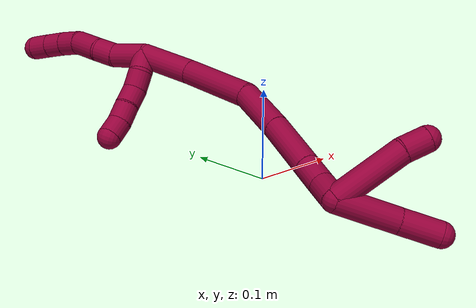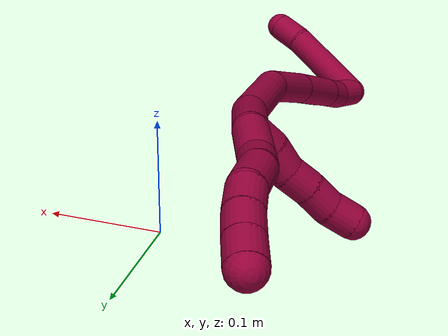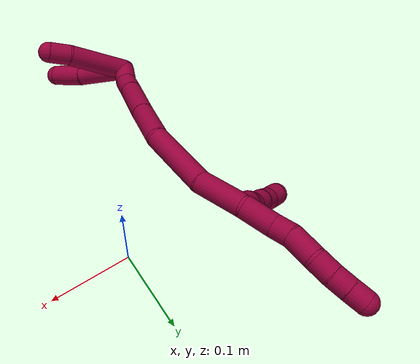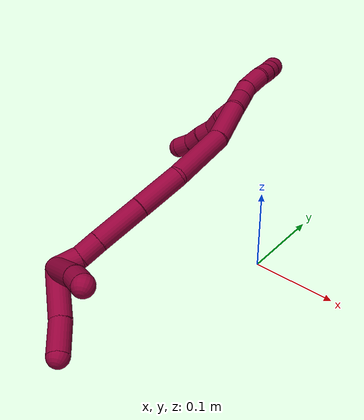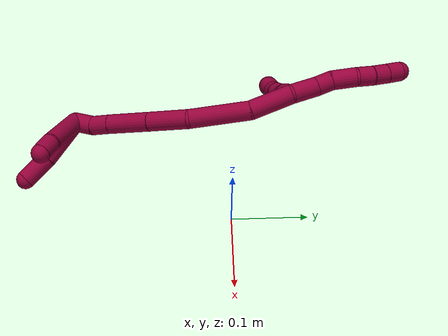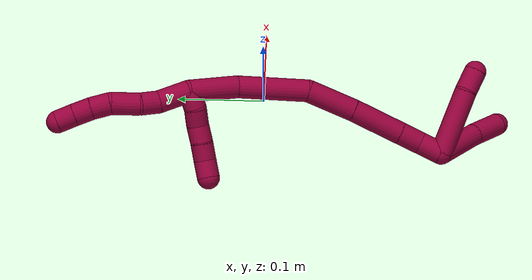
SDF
<sdf version="1.7">
 <world name="default">
  <model name="photoneo_s_sensor">
   <static>1</static>
   <pose>0 0 2 1.57079 1.57079 3.14159</pose>
   <link name="link">
    <inertial><mass>0.1</mass></inertial>
    <sensor name="sensor" type="depth">
     <update_rate>30</update_rate>
     <camera>
      <horizontal_fov>1.22</horizontal_fov>
      <image><width>1920</width><height>1200</height><format>B8G8R8</format></image>
      <clip><near>0.1</near><far>4</far></clip>
      <depth_camera><output>points</output></depth_camera>
     </camera>
     <plugin name="camera_plugin" filename="libgazebo_ros_depth_camera.so">
      <baseline>0.2</baseline>
      <alwaysOn>1</alwaysOn>
      <updateRate>0.0</updateRate>
      <cameraName>camera_ir</cameraName>
      <imageTopicName>/camera/color/image_raw</imageTopicName>
      <cameraInfoTopicName>/camera/color/camera_info</cameraInfoTopicName>
      <depthImageTopicName>/camera/depth/image_raw</depthImageTopicName>
      <depthImageCameraInfoTopicName>/camera/depth/camera_info</depthImageCameraInfoTopicName>
      <pointCloudTopicName>/camera/depth/points</pointCloudTopicName>
      <frameName>fr_optical</frameName>
      <pointCloudCutoff>0.1</pointCloudCutoff>
      <pointCloudCutoffMax>2.0</pointCloudCutoffMax>
      <distortionK1>0</distortionK1>
      <distortionK2>0</distortionK2>
      <distortionK3>0</distortionK3>
      <distortionT1>0</distortionT1>
      <distortionT2>0</distortionT2>
      <CxPrime>0</CxPrime>
      <Cx>0</Cx>
      <Cy>0</Cy>
      <focalLength>0</focalLength>
      <hackBaseline>0</hackBaseline>
     </plugin>
    </sensor>
   </link>
  </model>
  <model name="bin">
   <static>1</static>
   <link name="bottom">
    <collision name="collision-bottom">
     <pose>0 0 -0.01 0 -0 0</pose>
     <geometry><box><size>0.8 0.6 0.02</size></box></geometry>
     <surface>
      <friction><ode><mu>100</mu><mu2>100</mu2></ode></friction>
      <contact><collide_bitmask>65535</collide_bitmask></contact>
     </surface>
    </collision>
   </link>
   <link name="west_wall">
    <collision name="collision-west_wall">
     <pose>-0.41 0 0.1 0 -0 0</pose>
     <geometry><box><size>0.02 0.6 0.2</size></box></geometry>
     <surface>
      <friction><ode><mu>100</mu><mu2>100</mu2></ode></friction>
      <contact><collide_bitmask>65535</collide_bitmask></contact>
     </surface>
    </collision>
   </link>
   <link name="east_wall">
    <collision name="collision-east_wall">
     <pose>0.41 0 0.1 0 -0 0</pose>
     <geometry><box><size>0.02 0.6 0.2</size></box></geometry>
     <surface>
      <friction><ode><mu>100</mu><mu2>100</mu2></ode></friction>
      <contact><collide_bitmask>65535</collide_bitmask></contact>
     </surface>
    </collision>
   </link>
   <link name="south_wall">
    <collision name="collision-south_wall">
     <pose>0 -0.31 0.1 0 -0 0</pose>
     <geometry><box><size>0.8 0.02 0.2</size></box></geometry>
     <surface>
      <friction><ode><mu>100</mu><mu2>100</mu2></ode></friction>
      <contact><collide_bitmask>65535</collide_bitmask></contact>
     </surface>
    </collision>
   </link>
   <link name="north_wall">
    <collision name="collision-north_wall">
     <pose>0 0.31 0.1 0 -0 0</pose>
     <geometry><box><size>0.8 0.02 0.2</size></box></geometry>
     <surface>
      <friction><ode><mu>100</mu><mu2>100</mu2></ode></friction>
      <contact><collide_bitmask>65535</collide_bitmask></contact>
     </surface>
    </collision>
   </link>
  </model>
  <model name="8">
   <static>0</static>
   <link name="8">
    <collision name="collision-cylinder-e_1_2_8">
     <pose>-0.004211 -0.005044 0.01647 0.297173 -0.239751 -0.036057</pose>
     <geometry><cylinder><radius>0.0125</radius><length>0.035464</length></cylinder></geometry>
     <surface>
      <friction><ode><mu>1.16</mu><mu2>1.16</mu2><slip1>0</slip1><slip2>0</slip2></ode></friction>
      <contact><ode><kp>1e+06</kp><kd>1</kd><max_vel>0</max_vel><min_depth>0.001</min_depth></ode></contact>
     </surface>
    </collision>
    <visual name="visual-cylinder-e_1_2_8">
     <pose>-0.004211 -0.005044 0.01647 0.297173 -0.239751 -0.036057</pose>
     <geometry><cylinder><radius>0.0125</radius><length>0.035464</length></cylinder></geometry>
     <material><ambient>0.584314 0 0.227451 1</ambient></material>
    </visual>
    <collision name="collision-cylinder-e_2_8_9">
     <pose>-0.010737 -0.010233 0.043281 0.014075 -0.220286 -0.001557</pose>
     <geometry><cylinder><radius>0.0125</radius><length>0.021196</length></cylinder></geometry>
     <surface>
      <friction><ode><mu>1.16</mu><mu2>1.16</mu2><slip1>0</slip1><slip2>0</slip2></ode></friction>
      <contact><ode><kp>1e+06</kp><kd>1</kd><max_vel>0</max_vel><min_depth>0.001</min_depth></ode></contact>
     </surface>
    </collision>
    <visual name="visual-cylinder-e_2_8_9">
     <pose>-0.010737 -0.010233 0.043281 0.014075 -0.220286 -0.001557</pose>
     <geometry><cylinder><radius>0.0125</radius><length>0.021196</length></cylinder></geometry>
     <material><ambient>0.584314 0 0.227451 1</ambient></material>
    </visual>
    <collision name="collision-cylinder-e_3_9_10">
     <pose>-0.020176 -0.010214 0.067667 -0.011701 -0.469346 0.002797</pose>
     <geometry><cylinder><radius>0.0125</radius><length>0.031499</length></cylinder></geometry>
     <surface>
      <friction><ode><mu>1.16</mu><mu2>1.16</mu2><slip1>0</slip1><slip2>0</slip2></ode></friction>
      <contact><ode><kp>1e+06</kp><kd>1</kd><max_vel>0</max_vel><min_depth>0.001</min_depth></ode></contact>
     </surface>
    </collision>
    <visual name="visual-cylinder-e_3_9_10">
     <pose>-0.020176 -0.010214 0.067667 -0.011701 -0.469346 0.002797</pose>
     <geometry><cylinder><radius>0.0125</radius><length>0.031499</length></cylinder></geometry>
     <material><ambient>0.584314 0 0.227451 1</ambient></material>
    </visual>
    <collision name="collision-cylinder-e_4_10_11">
     <pose>-0.031921 -0.013196 0.091044 0.32514 -0.438713 -0.073101</pose>
     <geometry><cylinder><radius>0.0125</radius><length>0.021755</length></cylinder></geometry>
     <surface>
      <friction><ode><mu>1.16</mu><mu2>1.16</mu2><slip1>0</slip1><slip2>0</slip2></ode></friction>
      <contact><ode><kp>1e+06</kp><kd>1</kd><max_vel>0</max_vel><min_depth>0.001</min_depth></ode></contact>
     </surface>
    </collision>
    <visual name="visual-cylinder-e_4_10_11">
     <pose>-0.031921 -0.013196 0.091044 0.32514 -0.438713 -0.073101</pose>
     <geometry><cylinder><radius>0.0125</radius><length>0.021755</length></cylinder></geometry>
     <material><ambient>0.584314 0 0.227451 1</ambient></material>
    </visual>
    <collision name="collision-cylinder-e_5_11_12">
     <pose>-0.039997 -0.020004 0.109029 0.400409 -0.352437 -0.072236</pose>
     <geometry><cylinder><radius>0.0125</radius><length>0.020023</length></cylinder></geometry>
     <surface>
      <friction><ode><mu>1.16</mu><mu2>1.16</mu2><slip1>0</slip1><slip2>0</slip2></ode></friction>
      <contact><ode><kp>1e+06</kp><kd>1</kd><max_vel>0</max_vel><min_depth>0.001</min_depth></ode></contact>
     </surface>
    </collision>
    <visual name="visual-cylinder-e_5_11_12">
     <pose>-0.039997 -0.020004 0.109029 0.400409 -0.352437 -0.072236</pose>
     <geometry><cylinder><radius>0.0125</radius><length>0.020023</length></cylinder></geometry>
     <material><ambient>0.584314 0 0.227451 1</ambient></material>
    </visual>
    <collision name="collision-cylinder-e_6_12_6">
     <pose>-0.04668 -0.02756 0.126345 0.42238 -0.327592 -0.070837</pose>
     <geometry><cylinder><radius>0.0125</radius><length>0.020062</length></cylinder></geometry>
     <surface>
      <friction><ode><mu>1.16</mu><mu2>1.16</mu2><slip1>0</slip1><slip2>0</slip2></ode></friction>
      <contact><ode><kp>1e+06</kp><kd>1</kd><max_vel>0</max_vel><min_depth>0.001</min_depth></ode></contact>
     </surface>
    </collision>
    <visual name="visual-cylinder-e_6_12_6">
     <pose>-0.04668 -0.02756 0.126345 0.42238 -0.327592 -0.070837</pose>
     <geometry><cylinder><radius>0.0125</radius><length>0.020062</length></cylinder></geometry>
     <material><ambient>0.584314 0 0.227451 1</ambient></material>
    </visual>
    <collision name="collision-cylinder-e_1_2_13">
     <pose>0.004173 -0.008871 -0.001974 1.78981 0.43043 0.532279</pose>
     <geometry><cylinder><radius>0.0125</radius><length>0.02</length></cylinder></geometry>
     <surface>
      <friction><ode><mu>1.16</mu><mu2>1.16</mu2><slip1>0</slip1><slip2>0</slip2></ode></friction>
      <contact><ode><kp>1e+06</kp><kd>1</kd><max_vel>0</max_vel><min_depth>0.001</min_depth></ode></contact>
     </surface>
    </collision>
    <visual name="visual-cylinder-e_1_2_13">
     <pose>0.004173 -0.008871 -0.001974 1.78981 0.43043 0.532279</pose>
     <geometry><cylinder><radius>0.0125</radius><length>0.02</length></cylinder></geometry>
     <material><ambient>0.584314 0 0.227451 1</ambient></material>
    </visual>
    <collision name="collision-cylinder-e_2_13_14">
     <pose>0.010056 -0.027552 -0.004855 1.66292 0.171938 0.188461</pose>
     <geometry><cylinder><radius>0.0125</radius><length>0.02</length></cylinder></geometry>
     <surface>
      <friction><ode><mu>1.16</mu><mu2>1.16</mu2><slip1>0</slip1><slip2>0</slip2></ode></friction>
      <contact><ode><kp>1e+06</kp><kd>1</kd><max_vel>0</max_vel><min_depth>0.001</min_depth></ode></contact>
     </surface>
    </collision>
    <visual name="visual-cylinder-e_2_13_14">
     <pose>0.010056 -0.027552 -0.004855 1.66292 0.171938 0.188461</pose>
     <geometry><cylinder><radius>0.0125</radius><length>0.02</length></cylinder></geometry>
     <material><ambient>0.584314 0 0.227451 1</ambient></material>
    </visual>
    <collision name="collision-cylinder-e_3_14_15">
     <pose>0.016509 -0.046161 -0.006094 1.60851 0.494067 0.512254</pose>
     <geometry><cylinder><radius>0.0125</radius><length>0.02</length></cylinder></geometry>
     <surface>
      <friction><ode><mu>1.16</mu><mu2>1.16</mu2><slip1>0</slip1><slip2>0</slip2></ode></friction>
      <contact><ode><kp>1e+06</kp><kd>1</kd><max_vel>0</max_vel><min_depth>0.001</min_depth></ode></contact>
     </surface>
    </collision>
    <visual name="visual-cylinder-e_3_14_15">
     <pose>0.016509 -0.046161 -0.006094 1.60851 0.494067 0.512254</pose>
     <geometry><cylinder><radius>0.0125</radius><length>0.02</length></cylinder></geometry>
     <material><ambient>0.584314 0 0.227451 1</ambient></material>
    </visual>
    <collision name="collision-cylinder-e_4_15_16">
     <pose>0.024935 -0.064247 -0.006816 1.61284 0.377252 0.393051</pose>
     <geometry><cylinder><radius>0.0125</radius><length>0.02</length></cylinder></geometry>
     <surface>
      <friction><ode><mu>1.16</mu><mu2>1.16</mu2><slip1>0</slip1><slip2>0</slip2></ode></friction>
      <contact><ode><kp>1e+06</kp><kd>1</kd><max_vel>0</max_vel><min_depth>0.001</min_depth></ode></contact>
     </surface>
    </collision>
    <visual name="visual-cylinder-e_4_15_16">
     <pose>0.024935 -0.064247 -0.006816 1.61284 0.377252 0.393051</pose>
     <geometry><cylinder><radius>0.0125</radius><length>0.02</length></cylinder></geometry>
     <material><ambient>0.584314 0 0.227451 1</ambient></material>
    </visual>
    <collision name="collision-cylinder-e_5_16_5">
     <pose>0.034282 -0.081755 -0.006599 1.49695 0.602054 0.561453</pose>
     <geometry><cylinder><radius>0.0125</radius><length>0.02</length></cylinder></geometry>
     <surface>
      <friction><ode><mu>1.16</mu><mu2>1.16</mu2><slip1>0</slip1><slip2>0</slip2></ode></friction>
      <contact><ode><kp>1e+06</kp><kd>1</kd><max_vel>0</max_vel><min_depth>0.001</min_depth></ode></contact>
     </surface>
    </collision>
    <visual name="visual-cylinder-e_5_16_5">
     <pose>0.034282 -0.081755 -0.006599 1.49695 0.602054 0.561453</pose>
     <geometry><cylinder><radius>0.0125</radius><length>0.02</length></cylinder></geometry>
     <material><ambient>0.584314 0 0.227451 1</ambient></material>
    </visual>
    <collision name="collision-cylinder-e_1_2_17">
     <pose>0.006152 -0.000196 -0.027153 3.13437 0.222796 3.07707</pose>
     <geometry><cylinder><radius>0.0125</radius><length>0.055685</length></cylinder></geometry>
     <surface>
      <friction><ode><mu>1.16</mu><mu2>1.16</mu2><slip1>0</slip1><slip2>0</slip2></ode></friction>
      <contact><ode><kp>1e+06</kp><kd>1</kd><max_vel>0</max_vel><min_depth>0.001</min_depth></ode></contact>
     </surface>
    </collision>
    <visual name="visual-cylinder-e_1_2_17">
     <pose>0.006152 -0.000196 -0.027153 3.13437 0.222796 3.07707</pose>
     <geometry><cylinder><radius>0.0125</radius><length>0.055685</length></cylinder></geometry>
     <material><ambient>0.584314 0 0.227451 1</ambient></material>
    </visual>
    <collision name="collision-cylinder-e_2_17_18">
     <pose>0.03019 -0.002125 -0.089306 3.09212 0.471952 2.93653</pose>
     <geometry><cylinder><radius>0.0125</radius><length>0.078685</length></cylinder></geometry>
     <surface>
      <friction><ode><mu>1.16</mu><mu2>1.16</mu2><slip1>0</slip1><slip2>0</slip2></ode></friction>
      <contact><ode><kp>1e+06</kp><kd>1</kd><max_vel>0</max_vel><min_depth>0.001</min_depth></ode></contact>
     </surface>
    </collision>
    <visual name="visual-cylinder-e_2_17_18">
     <pose>0.03019 -0.002125 -0.089306 3.09212 0.471952 2.93653</pose>
     <geometry><cylinder><radius>0.0125</radius><length>0.078685</length></cylinder></geometry>
     <material><ambient>0.584314 0 0.227451 1</ambient></material>
    </visual>
    <collision name="collision-cylinder-e_3_18_19">
     <pose>0.062718 -0.01372 -0.145477 2.70569 0.559968 1.82894</pose>
     <geometry><cylinder><radius>0.0125</radius><length>0.055133</length></cylinder></geometry>
     <surface>
      <friction><ode><mu>1.16</mu><mu2>1.16</mu2><slip1>0</slip1><slip2>0</slip2></ode></friction>
      <contact><ode><kp>1e+06</kp><kd>1</kd><max_vel>0</max_vel><min_depth>0.001</min_depth></ode></contact>
     </surface>
    </collision>
    <visual name="visual-cylinder-e_3_18_19">
     <pose>0.062718 -0.01372 -0.145477 2.70569 0.559968 1.82894</pose>
     <geometry><cylinder><radius>0.0125</radius><length>0.055133</length></cylinder></geometry>
     <material><ambient>0.584314 0 0.227451 1</ambient></material>
    </visual>
    <collision name="collision-cylinder-e_4_19_20">
     <pose>0.092816 -0.035246 -0.188226 2.64598 0.562283 1.7027</pose>
     <geometry><cylinder><radius>0.0125</radius><length>0.057983</length></cylinder></geometry>
     <surface>
      <friction><ode><mu>1.16</mu><mu2>1.16</mu2><slip1>0</slip1><slip2>0</slip2></ode></friction>
      <contact><ode><kp>1e+06</kp><kd>1</kd><max_vel>0</max_vel><min_depth>0.001</min_depth></ode></contact>
     </surface>
    </collision>
    <visual name="visual-cylinder-e_4_19_20">
     <pose>0.092816 -0.035246 -0.188226 2.64598 0.562283 1.7027</pose>
     <geometry><cylinder><radius>0.0125</radius><length>0.057983</length></cylinder></geometry>
     <material><ambient>0.584314 0 0.227451 1</ambient></material>
    </visual>
    <collision name="collision-cylinder-e_5_20_21">
     <pose>0.114929 -0.052218 -0.219542 2.6427 0.540531 1.65459</pose>
     <geometry><cylinder><radius>0.0125</radius><length>0.025872</length></cylinder></geometry>
     <surface>
      <friction><ode><mu>1.16</mu><mu2>1.16</mu2><slip1>0</slip1><slip2>0</slip2></ode></friction>
      <contact><ode><kp>1e+06</kp><kd>1</kd><max_vel>0</max_vel><min_depth>0.001</min_depth></ode></contact>
     </surface>
    </collision>
    <visual name="visual-cylinder-e_5_20_21">
     <pose>0.114929 -0.052218 -0.219542 2.6427 0.540531 1.65459</pose>
     <geometry><cylinder><radius>0.0125</radius><length>0.025872</length></cylinder></geometry>
     <material><ambient>0.584314 0 0.227451 1</ambient></material>
    </visual>
    <collision name="collision-cylinder-e_6_21_1">
     <pose>0.131132 -0.061563 -0.23765 2.69197 0.798886 2.14868</pose>
     <geometry><cylinder><radius>0.0125</radius><length>0.026643</length></cylinder></geometry>
     <surface>
      <friction><ode><mu>1.16</mu><mu2>1.16</mu2><slip1>0</slip1><slip2>0</slip2></ode></friction>
      <contact><ode><kp>1e+06</kp><kd>1</kd><max_vel>0</max_vel><min_depth>0.001</min_depth></ode></contact>
     </surface>
    </collision>
    <visual name="visual-cylinder-e_6_21_1">
     <pose>0.131132 -0.061563 -0.23765 2.69197 0.798886 2.14868</pose>
     <geometry><cylinder><radius>0.0125</radius><length>0.026643</length></cylinder></geometry>
     <material><ambient>0.584314 0 0.227451 1</ambient></material>
    </visual>
    <collision name="collision-cylinder-e_1_1_22">
     <pose>0.130848 -0.064813 -0.274958 -3.11435 -0.327317 2.97696</pose>
     <geometry><cylinder><radius>0.0125</radius><length>0.061147</length></cylinder></geometry>
     <surface>
      <friction><ode><mu>1.16</mu><mu2>1.16</mu2><slip1>0</slip1><slip2>0</slip2></ode></friction>
      <contact><ode><kp>1e+06</kp><kd>1</kd><max_vel>0</max_vel><min_depth>0.001</min_depth></ode></contact>
     </surface>
    </collision>
    <visual name="visual-cylinder-e_1_1_22">
     <pose>0.130848 -0.064813 -0.274958 -3.11435 -0.327317 2.97696</pose>
     <geometry><cylinder><radius>0.0125</radius><length>0.061147</length></cylinder></geometry>
     <material><ambient>0.584314 0 0.227451 1</ambient></material>
    </visual>
    <collision name="collision-cylinder-e_2_22_4">
     <pose>0.11719 -0.063303 -0.32293 -3.10373 -0.198345 2.76552</pose>
     <geometry><cylinder><radius>0.0125</radius><length>0.038853</length></cylinder></geometry>
     <surface>
      <friction><ode><mu>1.16</mu><mu2>1.16</mu2><slip1>0</slip1><slip2>0</slip2></ode></friction>
      <contact><ode><kp>1e+06</kp><kd>1</kd><max_vel>0</max_vel><min_depth>0.001</min_depth></ode></contact>
     </surface>
    </collision>
    <visual name="visual-cylinder-e_2_22_4">
     <pose>0.11719 -0.063303 -0.32293 -3.10373 -0.198345 2.76552</pose>
     <geometry><cylinder><radius>0.0125</radius><length>0.038853</length></cylinder></geometry>
     <material><ambient>0.584314 0 0.227451 1</ambient></material>
    </visual>
    <collision name="collision-cylinder-e_1_1_23">
     <pose>0.131758 -0.035339 -0.265724 -2.14799 -0.242134 0.441494</pose>
     <geometry><cylinder><radius>0.0125</radius><length>0.074396</length></cylinder></geometry>
     <surface>
      <friction><ode><mu>1.16</mu><mu2>1.16</mu2><slip1>0</slip1><slip2>0</slip2></ode></friction>
      <contact><ode><kp>1e+06</kp><kd>1</kd><max_vel>0</max_vel><min_depth>0.001</min_depth></ode></contact>
     </surface>
    </collision>
    <visual name="visual-cylinder-e_1_1_23">
     <pose>0.131758 -0.035339 -0.265724 -2.14799 -0.242134 0.441494</pose>
     <geometry><cylinder><radius>0.0125</radius><length>0.074396</length></cylinder></geometry>
     <material><ambient>0.584314 0 0.227451 1</ambient></material>
    </visual>
    <collision name="collision-cylinder-e_2_23_3">
     <pose>0.118796 0.003715 -0.293812 -2.33235 -0.321308 0.723498</pose>
     <geometry><cylinder><radius>0.0125</radius><length>0.025604</length></cylinder></geometry>
     <surface>
      <friction><ode><mu>1.16</mu><mu2>1.16</mu2><slip1>0</slip1><slip2>0</slip2></ode></friction>
      <contact><ode><kp>1e+06</kp><kd>1</kd><max_vel>0</max_vel><min_depth>0.001</min_depth></ode></contact>
     </surface>
    </collision>
    <visual name="visual-cylinder-e_2_23_3">
     <pose>0.118796 0.003715 -0.293812 -2.33235 -0.321308 0.723498</pose>
     <geometry><cylinder><radius>0.0125</radius><length>0.025604</length></cylinder></geometry>
     <material><ambient>0.584314 0 0.227451 1</ambient></material>
    </visual>
    <collision name="collision-sphere-3">
     <pose>0.114753 0.012507 -0.302194 0 -0 0</pose>
     <geometry><sphere><radius>0.0125</radius></sphere></geometry>
     <surface>
      <friction><ode><mu>1.16</mu><mu2>1.16</mu2><slip1>0</slip1><slip2>0</slip2></ode></friction>
      <contact><ode><kp>1e+06</kp><kd>1</kd><max_vel>0</max_vel><min_depth>0.001</min_depth></ode></contact>
     </surface>
    </collision>
    <visual name="visual-sphere-3">
     <pose>0.114753 0.012507 -0.302194 0 -0 0</pose>
     <geometry><sphere><radius>0.0125</radius></sphere></geometry>
     <material><ambient>0.584314 0 0.227451 1</ambient></material>
    </visual>
    <collision name="collision-sphere-23">
     <pose>0.122839 -0.005077 -0.28543 0 -0 0</pose>
     <geometry><sphere><radius>0.0125</radius></sphere></geometry>
     <surface>
      <friction><ode><mu>1.16</mu><mu2>1.16</mu2><slip1>0</slip1><slip2>0</slip2></ode></friction>
      <contact><ode><kp>1e+06</kp><kd>1</kd><max_vel>0</max_vel><min_depth>0.001</min_depth></ode></contact>
     </surface>
    </collision>
    <visual name="visual-sphere-23">
     <pose>0.122839 -0.005077 -0.28543 0 -0 0</pose>
     <geometry><sphere><radius>0.0125</radius></sphere></geometry>
     <material><ambient>0.584314 0 0.227451 1</ambient></material>
    </visual>
    <collision name="collision-sphere-4">
     <pose>0.113362 -0.062582 -0.341961 0 -0 0</pose>
     <geometry><sphere><radius>0.0125</radius></sphere></geometry>
     <surface>
      <friction><ode><mu>1.16</mu><mu2>1.16</mu2><slip1>0</slip1><slip2>0</slip2></ode></friction>
      <contact><ode><kp>1e+06</kp><kd>1</kd><max_vel>0</max_vel><min_depth>0.001</min_depth></ode></contact>
     </surface>
    </collision>
    <visual name="visual-sphere-4">
     <pose>0.113362 -0.062582 -0.341961 0 -0 0</pose>
     <geometry><sphere><radius>0.0125</radius></sphere></geometry>
     <material><ambient>0.584314 0 0.227451 1</ambient></material>
    </visual>
    <collision name="collision-sphere-22">
     <pose>0.121018 -0.064024 -0.303898 0 -0 0</pose>
     <geometry><sphere><radius>0.0125</radius></sphere></geometry>
     <surface>
      <friction><ode><mu>1.16</mu><mu2>1.16</mu2><slip1>0</slip1><slip2>0</slip2></ode></friction>
      <contact><ode><kp>1e+06</kp><kd>1</kd><max_vel>0</max_vel><min_depth>0.001</min_depth></ode></contact>
     </surface>
    </collision>
    <visual name="visual-sphere-22">
     <pose>0.121018 -0.064024 -0.303898 0 -0 0</pose>
     <geometry><sphere><radius>0.0125</radius></sphere></geometry>
     <material><ambient>0.584314 0 0.227451 1</ambient></material>
    </visual>
    <collision name="collision-sphere-1">
     <pose>0.140677 -0.065601 -0.246018 0 -0 0</pose>
     <geometry><sphere><radius>0.0125</radius></sphere></geometry>
     <surface>
      <friction><ode><mu>1.16</mu><mu2>1.16</mu2><slip1>0</slip1><slip2>0</slip2></ode></friction>
      <contact><ode><kp>1e+06</kp><kd>1</kd><max_vel>0</max_vel><min_depth>0.001</min_depth></ode></contact>
     </surface>
    </collision>
    <visual name="visual-sphere-1">
     <pose>0.140677 -0.065601 -0.246018 0 -0 0</pose>
     <geometry><sphere><radius>0.0125</radius></sphere></geometry>
     <material><ambient>0.584314 0 0.227451 1</ambient></material>
    </visual>
    <collision name="collision-sphere-21">
     <pose>0.121586 -0.057525 -0.229282 0 -0 0</pose>
     <geometry><sphere><radius>0.0125</radius></sphere></geometry>
     <surface>
      <friction><ode><mu>1.16</mu><mu2>1.16</mu2><slip1>0</slip1><slip2>0</slip2></ode></friction>
      <contact><ode><kp>1e+06</kp><kd>1</kd><max_vel>0</max_vel><min_depth>0.001</min_depth></ode></contact>
     </surface>
    </collision>
    <visual name="visual-sphere-21">
     <pose>0.121586 -0.057525 -0.229282 0 -0 0</pose>
     <geometry><sphere><radius>0.0125</radius></sphere></geometry>
     <material><ambient>0.584314 0 0.227451 1</ambient></material>
    </visual>
    <collision name="collision-sphere-12">
     <pose>-0.043453 -0.023666 0.117682 0 -0 0</pose>
     <geometry><sphere><radius>0.0125</radius></sphere></geometry>
     <surface>
      <friction><ode><mu>1.16</mu><mu2>1.16</mu2><slip1>0</slip1><slip2>0</slip2></ode></friction>
      <contact><ode><kp>1e+06</kp><kd>1</kd><max_vel>0</max_vel><min_depth>0.001</min_depth></ode></contact>
     </surface>
    </collision>
    <visual name="visual-sphere-12">
     <pose>-0.043453 -0.023666 0.117682 0 -0 0</pose>
     <geometry><sphere><radius>0.0125</radius></sphere></geometry>
     <material><ambient>0.584314 0 0.227451 1</ambient></material>
    </visual>
    <collision name="collision-sphere-11">
     <pose>-0.036541 -0.016341 0.100376 0 -0 0</pose>
     <geometry><sphere><radius>0.0125</radius></sphere></geometry>
     <surface>
      <friction><ode><mu>1.16</mu><mu2>1.16</mu2><slip1>0</slip1><slip2>0</slip2></ode></friction>
      <contact><ode><kp>1e+06</kp><kd>1</kd><max_vel>0</max_vel><min_depth>0.001</min_depth></ode></contact>
     </surface>
    </collision>
    <visual name="visual-sphere-11">
     <pose>-0.036541 -0.016341 0.100376 0 -0 0</pose>
     <geometry><sphere><radius>0.0125</radius></sphere></geometry>
     <material><ambient>0.584314 0 0.227451 1</ambient></material>
    </visual>
    <collision name="collision-sphere-10">
     <pose>-0.0273 -0.01005 0.081713 0 -0 0</pose>
     <geometry><sphere><radius>0.0125</radius></sphere></geometry>
     <surface>
      <friction><ode><mu>1.16</mu><mu2>1.16</mu2><slip1>0</slip1><slip2>0</slip2></ode></friction>
      <contact><ode><kp>1e+06</kp><kd>1</kd><max_vel>0</max_vel><min_depth>0.001</min_depth></ode></contact>
     </surface>
    </collision>
    <visual name="visual-sphere-10">
     <pose>-0.0273 -0.01005 0.081713 0 -0 0</pose>
     <geometry><sphere><radius>0.0125</radius></sphere></geometry>
     <material><ambient>0.584314 0 0.227451 1</ambient></material>
    </visual>
    <collision name="collision-sphere-9">
     <pose>-0.013053 -0.010379 0.053622 0 -0 0</pose>
     <geometry><sphere><radius>0.0125</radius></sphere></geometry>
     <surface>
      <friction><ode><mu>1.16</mu><mu2>1.16</mu2><slip1>0</slip1><slip2>0</slip2></ode></friction>
      <contact><ode><kp>1e+06</kp><kd>1</kd><max_vel>0</max_vel><min_depth>0.001</min_depth></ode></contact>
     </surface>
    </collision>
    <visual name="visual-sphere-9">
     <pose>-0.013053 -0.010379 0.053622 0 -0 0</pose>
     <geometry><sphere><radius>0.0125</radius></sphere></geometry>
     <material><ambient>0.584314 0 0.227451 1</ambient></material>
    </visual>
    <collision name="collision-sphere-2">
     <geometry><sphere><radius>0.0125</radius></sphere></geometry>
     <surface>
      <friction><ode><mu>1.16</mu><mu2>1.16</mu2><slip1>0</slip1><slip2>0</slip2></ode></friction>
      <contact><ode><kp>1e+06</kp><kd>1</kd><max_vel>0</max_vel><min_depth>0.001</min_depth></ode></contact>
     </surface>
    </collision>
    <visual name="visual-sphere-2">
     <geometry><sphere><radius>0.0125</radius></sphere></geometry>
     <material><ambient>0.584314 0 0.227451 1</ambient></material>
    </visual>
    <collision name="collision-sphere-19">
     <pose>0.07736 -0.023581 -0.166649 0 -0 0</pose>
     <geometry><sphere><radius>0.0125</radius></sphere></geometry>
     <surface>
      <friction><ode><mu>1.16</mu><mu2>1.16</mu2><slip1>0</slip1><slip2>0</slip2></ode></friction>
      <contact><ode><kp>1e+06</kp><kd>1</kd><max_vel>0</max_vel><min_depth>0.001</min_depth></ode></contact>
     </surface>
    </collision>
    <visual name="visual-sphere-19">
     <pose>0.07736 -0.023581 -0.166649 0 -0 0</pose>
     <geometry><sphere><radius>0.0125</radius></sphere></geometry>
     <material><ambient>0.584314 0 0.227451 1</ambient></material>
    </visual>
    <collision name="collision-sphere-8">
     <pose>-0.008421 -0.010088 0.03294 0 -0 0</pose>
     <geometry><sphere><radius>0.0125</radius></sphere></geometry>
     <surface>
      <friction><ode><mu>1.16</mu><mu2>1.16</mu2><slip1>0</slip1><slip2>0</slip2></ode></friction>
      <contact><ode><kp>1e+06</kp><kd>1</kd><max_vel>0</max_vel><min_depth>0.001</min_depth></ode></contact>
     </surface>
    </collision>
    <visual name="visual-sphere-8">
     <pose>-0.008421 -0.010088 0.03294 0 -0 0</pose>
     <geometry><sphere><radius>0.0125</radius></sphere></geometry>
     <material><ambient>0.584314 0 0.227451 1</ambient></material>
    </visual>
    <collision name="collision-sphere-6">
     <pose>-0.049908 -0.031453 0.135008 0 -0 0</pose>
     <geometry><sphere><radius>0.0125</radius></sphere></geometry>
     <surface>
      <friction><ode><mu>1.16</mu><mu2>1.16</mu2><slip1>0</slip1><slip2>0</slip2></ode></friction>
      <contact><ode><kp>1e+06</kp><kd>1</kd><max_vel>0</max_vel><min_depth>0.001</min_depth></ode></contact>
     </surface>
    </collision>
    <visual name="visual-sphere-6">
     <pose>-0.049908 -0.031453 0.135008 0 -0 0</pose>
     <geometry><sphere><radius>0.0125</radius></sphere></geometry>
     <material><ambient>0.584314 0 0.227451 1</ambient></material>
    </visual>
    <collision name="collision-sphere-13">
     <pose>0.008345 -0.017742 -0.003949 0 -0 0</pose>
     <geometry><sphere><radius>0.0125</radius></sphere></geometry>
     <surface>
      <friction><ode><mu>1.16</mu><mu2>1.16</mu2><slip1>0</slip1><slip2>0</slip2></ode></friction>
      <contact><ode><kp>1e+06</kp><kd>1</kd><max_vel>0</max_vel><min_depth>0.001</min_depth></ode></contact>
     </surface>
    </collision>
    <visual name="visual-sphere-13">
     <pose>0.008345 -0.017742 -0.003949 0 -0 0</pose>
     <geometry><sphere><radius>0.0125</radius></sphere></geometry>
     <material><ambient>0.584314 0 0.227451 1</ambient></material>
    </visual>
    <collision name="collision-sphere-14">
     <pose>0.011767 -0.037363 -0.005762 0 -0 0</pose>
     <geometry><sphere><radius>0.0125</radius></sphere></geometry>
     <surface>
      <friction><ode><mu>1.16</mu><mu2>1.16</mu2><slip1>0</slip1><slip2>0</slip2></ode></friction>
      <contact><ode><kp>1e+06</kp><kd>1</kd><max_vel>0</max_vel><min_depth>0.001</min_depth></ode></contact>
     </surface>
    </collision>
    <visual name="visual-sphere-14">
     <pose>0.011767 -0.037363 -0.005762 0 -0 0</pose>
     <geometry><sphere><radius>0.0125</radius></sphere></geometry>
     <material><ambient>0.584314 0 0.227451 1</ambient></material>
    </visual>
    <collision name="collision-sphere-15">
     <pose>0.021251 -0.054959 -0.006426 0 -0 0</pose>
     <geometry><sphere><radius>0.0125</radius></sphere></geometry>
     <surface>
      <friction><ode><mu>1.16</mu><mu2>1.16</mu2><slip1>0</slip1><slip2>0</slip2></ode></friction>
      <contact><ode><kp>1e+06</kp><kd>1</kd><max_vel>0</max_vel><min_depth>0.001</min_depth></ode></contact>
     </surface>
    </collision>
    <visual name="visual-sphere-15">
     <pose>0.021251 -0.054959 -0.006426 0 -0 0</pose>
     <geometry><sphere><radius>0.0125</radius></sphere></geometry>
     <material><ambient>0.584314 0 0.227451 1</ambient></material>
    </visual>
    <collision name="collision-sphere-16">
     <pose>0.028619 -0.073536 -0.007207 0 -0 0</pose>
     <geometry><sphere><radius>0.0125</radius></sphere></geometry>
     <surface>
      <friction><ode><mu>1.16</mu><mu2>1.16</mu2><slip1>0</slip1><slip2>0</slip2></ode></friction>
      <contact><ode><kp>1e+06</kp><kd>1</kd><max_vel>0</max_vel><min_depth>0.001</min_depth></ode></contact>
     </surface>
    </collision>
    <visual name="visual-sphere-16">
     <pose>0.028619 -0.073536 -0.007207 0 -0 0</pose>
     <geometry><sphere><radius>0.0125</radius></sphere></geometry>
     <material><ambient>0.584314 0 0.227451 1</ambient></material>
    </visual>
    <collision name="collision-sphere-5">
     <pose>0.039945 -0.089975 -0.005991 0 -0 0</pose>
     <geometry><sphere><radius>0.0125</radius></sphere></geometry>
     <surface>
      <friction><ode><mu>1.16</mu><mu2>1.16</mu2><slip1>0</slip1><slip2>0</slip2></ode></friction>
      <contact><ode><kp>1e+06</kp><kd>1</kd><max_vel>0</max_vel><min_depth>0.001</min_depth></ode></contact>
     </surface>
    </collision>
    <visual name="visual-sphere-5">
     <pose>0.039945 -0.089975 -0.005991 0 -0 0</pose>
     <geometry><sphere><radius>0.0125</radius></sphere></geometry>
     <material><ambient>0.584314 0 0.227451 1</ambient></material>
    </visual>
    <collision name="collision-sphere-17">
     <pose>0.012304 -0.000392 -0.054307 0 -0 0</pose>
     <geometry><sphere><radius>0.0125</radius></sphere></geometry>
     <surface>
      <friction><ode><mu>1.16</mu><mu2>1.16</mu2><slip1>0</slip1><slip2>0</slip2></ode></friction>
      <contact><ode><kp>1e+06</kp><kd>1</kd><max_vel>0</max_vel><min_depth>0.001</min_depth></ode></contact>
     </surface>
    </collision>
    <visual name="visual-sphere-17">
     <pose>0.012304 -0.000392 -0.054307 0 -0 0</pose>
     <geometry><sphere><radius>0.0125</radius></sphere></geometry>
     <material><ambient>0.584314 0 0.227451 1</ambient></material>
    </visual>
    <collision name="collision-sphere-18">
     <pose>0.048076 -0.003858 -0.124305 0 -0 0</pose>
     <geometry><sphere><radius>0.0125</radius></sphere></geometry>
     <surface>
      <friction><ode><mu>1.16</mu><mu2>1.16</mu2><slip1>0</slip1><slip2>0</slip2></ode></friction>
      <contact><ode><kp>1e+06</kp><kd>1</kd><max_vel>0</max_vel><min_depth>0.001</min_depth></ode></contact>
     </surface>
    </collision>
    <visual name="visual-sphere-18">
     <pose>0.048076 -0.003858 -0.124305 0 -0 0</pose>
     <geometry><sphere><radius>0.0125</radius></sphere></geometry>
     <material><ambient>0.584314 0 0.227451 1</ambient></material>
    </visual>
    <collision name="collision-sphere-20">
     <pose>0.108272 -0.046911 -0.209802 0 -0 0</pose>
     <geometry><sphere><radius>0.0125</radius></sphere></geometry>
     <surface>
      <friction><ode><mu>1.16</mu><mu2>1.16</mu2><slip1>0</slip1><slip2>0</slip2></ode></friction>
      <contact><ode><kp>1e+06</kp><kd>1</kd><max_vel>0</max_vel><min_depth>0.001</min_depth></ode></contact>
     </surface>
    </collision>
    <visual name="visual-sphere-20">
     <pose>0.108272 -0.046911 -0.209802 0 -0 0</pose>
     <geometry><sphere><radius>0.0125</radius></sphere></geometry>
     <material><ambient>0.584314 0 0.227451 1</ambient></material>
    </visual>
    <inertial>
     <pose>0.055704 -0.028608 -0.115109 0 -0 0</pose>
     <mass>0.75</mass>
     <inertia><ixx>4e-05</ixx><ixy>0</ixy><ixz>0</ixz><iyy>0.000161</iyy><iyz>0</iyz><izz>-5.2e-05</izz></inertia>
    </inertial>
   </link>
   <pose>-0.097426 0.077948 0.139789 1.28195 -0.353336 -2.52819</pose>
  </model>
 </world>
</sdf>
